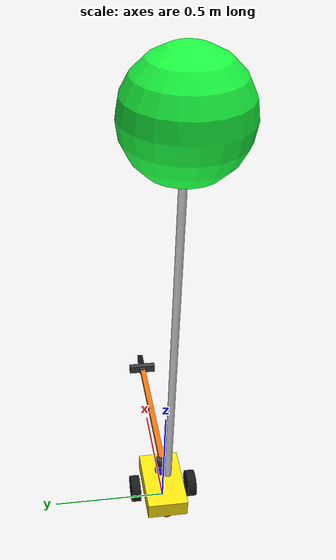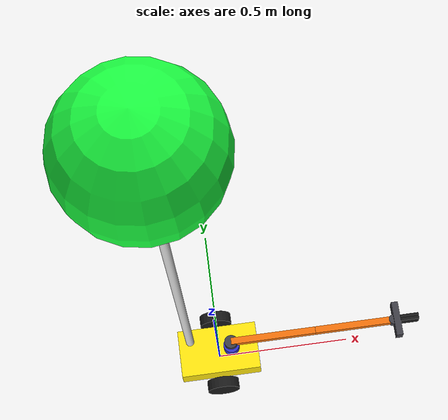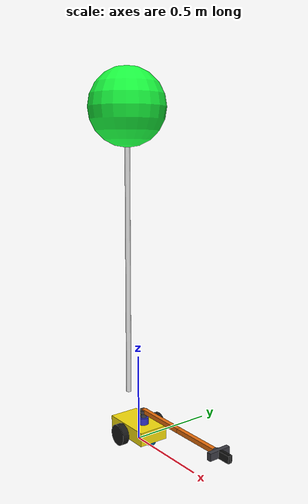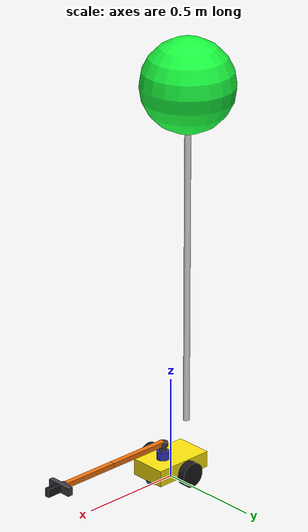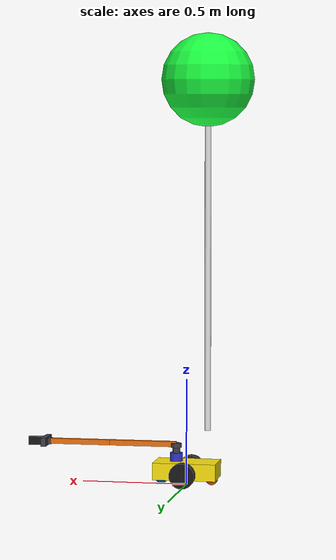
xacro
<?xml version="1.0"?>
<robot name="sewer_robot" xmlns:xacro="http://www.ros.org/wiki/xacro">
  <xacro:include filename="sewer_robot.urdf.xacro"/>

  <xacro:property name="l1" value="0.32"/>
  <xacro:property name="l2" value="0.30"/>
  <xacro:property name="link_t" value="0.025"/>
  <xacro:property name="finger_len" value="0.07"/>
  <xacro:property name="finger_t" value="0.012"/>
  <xacro:property name="finger_h" value="0.04"/>
  <xacro:property name="finger_max" value="0.055"/>
  <xacro:property name="g_tip" value="0.06"/>

  <xacro:macro name="cyl_inertia" params="m r h">
    <inertia ixx="${m*(3*r*r+h*h)/12}" ixy="0" ixz="0" iyy="${m*(3*r*r+h*h)/12}" iyz="0" izz="${m*r*r/2}"/>
  </xacro:macro>

  <!-- ===== depth camera (same frame and hfov as robot_cam; planar depth in metres) ===== -->
  <gazebo reference="camera_link">
    <sensor name="robot_depth" type="depth_camera">
      <always_on>true</always_on>
      <update_rate>5</update_rate>
      <topic>robot_depth</topic>
      <gz_frame_id>camera_link</gz_frame_id>
      <camera>
        <horizontal_fov>1.5</horizontal_fov>
        <image><width>320</width><height>180</height><format>R_FLOAT32</format></image>
        <clip><near>0.1</near><far>5.0</far></clip>
      </camera>
    </sensor>
  </gazebo>

  <!-- ===== arm ===== -->
  <link name="arm_mast_link">
    <visual><origin xyz="0 0 0.015"/><geometry><cylinder radius="0.018" length="0.03"/></geometry>
      <material name="arm_grey"><color rgba="0.25 0.25 0.28 1"/></material></visual>
    <collision><origin xyz="0 0 0.015"/><geometry><cylinder radius="0.018" length="0.03"/></geometry></collision>
    <inertial><origin xyz="0 0 0.015"/><mass value="0.05"/><xacro:cyl_inertia m="0.05" r="0.018" h="0.03"/></inertial>
  </link>
  <!-- On top of the LiDAR housing (lidar_link at z 0.07, housing top at 0.09): nothing of the folded arm is in the scan plane. -->
  <joint name="arm_mast_joint" type="fixed">
    <parent link="base_link"/><child link="arm_mast_link"/><origin xyz="0.05 0 0.09"/>
  </joint>

  <link name="arm_turret_link">
    <visual><origin xyz="0 0 0.005"/><geometry><cylinder radius="0.025" length="0.02"/></geometry>
      <material name="arm_grey"/></visual>
    <collision><origin xyz="0 0 0.005"/><geometry><cylinder radius="0.025" length="0.02"/></geometry></collision>
    <inertial><origin xyz="0 0 0.005"/><mass value="0.05"/><xacro:cyl_inertia m="0.05" r="0.025" h="0.02"/></inertial>
  </link>
  <joint name="arm_turret_joint" type="revolute">
    <parent link="arm_mast_link"/><child link="arm_turret_link"/><origin xyz="0 0 0.03"/><axis xyz="0 0 1"/>
    <limit lower="-1.9" upper="1.9" effort="5" velocity="1.5"/><dynamics damping="0.2"/>
  </joint>

  <xacro:macro name="arm_link" params="name length mass rgba">
    <link name="${name}">
      <visual><origin xyz="${length/2} 0 0"/><geometry><box size="${length} ${link_t} ${link_t}"/></geometry>
        <material name="${name}_mat"><color rgba="${rgba}"/></material></visual>
      <collision><origin xyz="${length/2} 0 0"/><geometry><box size="${length} ${link_t} ${link_t}"/></geometry></collision>
      <inertial><origin xyz="${length/2} 0 0"/><mass value="${mass}"/>
        <inertia ixx="${mass*2*link_t*link_t/12}" ixy="0" ixz="0" iyy="${mass*(length*length+link_t*link_t)/12}" iyz="0"
                 izz="${mass*(length*length+link_t*link_t)/12}"/></inertial>
    </link>
  </xacro:macro>
  <xacro:arm_link name="arm_upper_link" length="${l1}" mass="0.18" rgba="0.95 0.45 0.05 1"/>
  <xacro:arm_link name="arm_fore_link" length="${l2}" mass="0.15" rgba="0.95 0.45 0.05 1"/>

  <!-- pitch joints: +angle points the link DOWN (rotation about +y) -->
  <joint name="arm_shoulder_joint" type="revolute">
    <parent link="arm_turret_link"/><child link="arm_upper_link"/><origin xyz="0 0 0.01"/><axis xyz="0 1 0"/>
    <limit lower="-2.7" upper="1.6" effort="20" velocity="1.5"/><dynamics damping="0.3"/>
  </joint>
  <joint name="arm_elbow_joint" type="revolute">
    <parent link="arm_upper_link"/><child link="arm_fore_link"/><origin xyz="${l1} 0 0"/><axis xyz="0 1 0"/>
    <limit lower="-2.8" upper="2.8" effort="12" velocity="1.5"/><dynamics damping="0.3"/>
  </joint>

  <link name="gripper_link">
    <visual><origin xyz="0.0125 0 0"/><geometry><box size="0.025 0.13 0.04"/></geometry>
      <material name="arm_grey"/></visual>
    <collision><origin xyz="0.0125 0 0"/><geometry><box size="0.025 0.13 0.04"/></geometry></collision>
    <inertial><origin xyz="0.0125 0 0"/><mass value="0.10"/>
      <inertia ixx="1.6e-4" ixy="0" ixz="0" iyy="1.9e-5" iyz="0" izz="1.5e-4"/></inertial>
  </link>
  <link name="arm_wrist_link">
    <visual><geometry><cylinder radius="0.018" length="0.03"/></geometry><material name="arm_grey"/></visual>
    <collision><geometry><cylinder radius="0.018" length="0.03"/></geometry></collision>
    <inertial><mass value="0.04"/><xacro:cyl_inertia m="0.04" r="0.018" h="0.03"/></inertial>
  </link>
  <joint name="arm_wrist_joint" type="revolute">
    <parent link="arm_fore_link"/><child link="arm_wrist_link"/><origin xyz="${l2} 0 0"/><axis xyz="0 1 0"/>
    <limit lower="-2.8" upper="2.8" effort="5" velocity="2.0"/><dynamics damping="0.1"/>
  </joint>
  <joint name="arm_wrist_yaw_joint" type="revolute">
    <parent link="arm_wrist_link"/><child link="gripper_link"/><origin xyz="0 0 0"/><axis xyz="0 0 1"/>
    <limit lower="-1.7" upper="1.7" effort="3" velocity="2.0"/><dynamics damping="0.05"/>
  </joint>

  <!-- fingers: inner face at y = +q (left) / -q (right); opening = q_left + q_right -->
  <xacro:macro name="finger" params="side sign">
    <link name="${side}_finger_link">
      <visual><origin xyz="0 ${sign*finger_t/2} 0"/><geometry><box size="${finger_len} ${finger_t} ${finger_h}"/></geometry>
        <material name="finger_mat"><color rgba="0.1 0.1 0.1 1"/></material></visual>
      <collision><origin xyz="0 ${sign*finger_t/2} 0"/><geometry><box size="${finger_len} ${finger_t} ${finger_h}"/></geometry></collision>
      <inertial><origin xyz="0 ${sign*finger_t/2} 0"/><mass value="0.03"/>
        <inertia ixx="4.4e-6" ixy="0" ixz="0" iyy="1.6e-5" iyz="0" izz="1.3e-5"/></inertial>
    </link>
    <joint name="${side}_finger_joint" type="prismatic">
      <parent link="gripper_link"/><child link="${side}_finger_link"/><origin xyz="${g_tip} 0 0"/>
      <axis xyz="0 ${sign} 0"/><limit lower="0" upper="${finger_max}" effort="20" velocity="0.2"/>
      <dynamics damping="1.0"/>
    </joint>
    <gazebo reference="${side}_finger_link"><mu1>1.5</mu1><mu2>1.5</mu2><kp>100000</kp><kd>10</kd></gazebo>
    <xacro:contact_sensor link="${side}_finger_link" collision="${side}_finger_link_collision"/>
  </xacro:macro>
  <xacro:finger side="left" sign="1"/>
  <xacro:finger side="right" sign="-1"/>

  <!-- ===== Gazebo joint controllers (SIMULATED). Gains are first guesses: tune in Gazebo (see ACCOUNT2_README). ===== -->
  <xacro:macro name="pos_ctl" params="joint topic p i d cmd_max init">
    <gazebo>
      <plugin filename="gz-sim-joint-position-controller-system" name="gz::sim::systems::JointPositionController">
        <joint_name>${joint}</joint_name>
        <topic>${topic}</topic>
        <p_gain>${p}</p_gain><i_gain>${i}</i_gain><d_gain>${d}</d_gain>
        <i_max>${cmd_max/2}</i_max><i_min>${-cmd_max/2}</i_min>
        <cmd_max>${cmd_max}</cmd_max><cmd_min>${-cmd_max}</cmd_min>
        <initial_position>${init}</initial_position>
      </plugin>
    </gazebo>
  </xacro:macro>
  <!-- initial positions = the stow pose from arm_kinematics.ik(ArmGeometry().stow) -->
  <xacro:pos_ctl joint="arm_turret_joint"   topic="arm/turret/cmd"   p="20"  i="1"  d="1.0" cmd_max="5"  init="0.0"/>
  <xacro:pos_ctl joint="arm_shoulder_joint" topic="arm/shoulder/cmd" p="50"  i="12" d="2.5" cmd_max="20" init="-2.539"/>
  <xacro:pos_ctl joint="arm_elbow_joint"    topic="arm/elbow/cmd"    p="35"  i="8"  d="1.5" cmd_max="12" init="2.745"/>
  <xacro:pos_ctl joint="arm_wrist_joint"    topic="arm/wrist/cmd"    p="10"  i="2"  d="0.5" cmd_max="5"  init="-0.206"/>
  <xacro:pos_ctl joint="arm_wrist_yaw_joint" topic="arm/wrist_yaw/cmd" p="6"   i="1"  d="0.3" cmd_max="3"  init="0.0"/>
  <xacro:pos_ctl joint="left_finger_joint"  topic="arm/left_finger/cmd"  p="600" i="0" d="10" cmd_max="15" init="0.04"/>
  <xacro:pos_ctl joint="right_finger_joint" topic="arm/right_finger/cmd" p="600" i="0" d="10" cmd_max="15" init="0.04"/>

  <gazebo>
    <plugin filename="gz-sim-joint-state-publisher-system" name="gz::sim::systems::JointStatePublisher">
      <topic>joint_states</topic>
      <joint_name>arm_turret_joint</joint_name>
      <joint_name>arm_shoulder_joint</joint_name>
      <joint_name>arm_elbow_joint</joint_name>
      <joint_name>arm_wrist_joint</joint_name>
      <joint_name>arm_wrist_yaw_joint</joint_name>
      <joint_name>left_finger_joint</joint_name>
      <joint_name>right_finger_joint</joint_name>
    </plugin>
  </gazebo>
</robot>

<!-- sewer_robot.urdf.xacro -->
<robot name="sewer_robot" xmlns:xacro="http://www.ros.org/wiki/xacro">

  <!-- Dimensions (metres / kg). Defaults chosen Day 2, see PLAN.md "Decisions made". -->
  <xacro:property name="chassis_l" value="0.30"/>
  <xacro:property name="chassis_w" value="0.18"/>
  <xacro:property name="chassis_h" value="0.08"/>
  <xacro:property name="chassis_m" value="4.0"/>
  <xacro:property name="wheel_r"   value="0.06"/>
  <xacro:property name="wheel_w"   value="0.04"/>
  <xacro:property name="wheel_m"   value="0.3"/>
  <xacro:property name="track"     value="0.26"/>  <!-- wheel centre to wheel centre -->
  <xacro:property name="caster_r"  value="0.03"/>
  <xacro:property name="caster_x"  value="0.12"/>
  <xacro:property name="caster_m"  value="0.05"/>

  <xacro:macro name="box_inertia" params="m x y z">
    <inertia ixx="${m*(y*y+z*z)/12}" ixy="0" ixz="0" iyy="${m*(x*x+z*z)/12}" iyz="0" izz="${m*(x*x+y*y)/12}"/>
  </xacro:macro>

  <!-- REP 105: base_footprint (on ground) -> base_link (wheel-axle height) -> sensors/wheels -->
  <link name="base_footprint">
    <inertial><mass value="0.001"/><inertia ixx="1e-6" ixy="0" ixz="0" iyy="1e-6" iyz="0" izz="1e-6"/></inertial>
  </link>

  <joint name="base_joint" type="fixed">
    <parent link="base_footprint"/><child link="base_link"/>
    <origin xyz="0 0 ${wheel_r}" rpy="0 0 0"/>
  </joint>
  <gazebo reference="base_joint"><preserveFixedJoint>true</preserveFixedJoint></gazebo>

  <link name="base_link">
    <visual>
      <origin xyz="0 0 0.01"/>
      <geometry><box size="${chassis_l} ${chassis_w} ${chassis_h}"/></geometry>
      <material name="body"><color rgba="1.0 0.9 0.05 1"/></material>
    </visual>
    <collision>
      <origin xyz="0 0 0.01"/>
      <geometry><box size="${chassis_l} ${chassis_w} ${chassis_h}"/></geometry>
    </collision>
    <inertial>
      <origin xyz="0 0 0.01"/><mass value="${chassis_m}"/>
      <xacro:box_inertia m="${chassis_m}" x="${chassis_l}" y="${chassis_w}" z="${chassis_h}"/>
    </inertial>
  </link>

  <!-- Wheels: continuous joints about y -->
  <xacro:macro name="wheel" params="name y">
    <link name="${name}_wheel_link">
      <visual>
        <origin rpy="${pi/2} 0 0"/>
        <geometry><cylinder radius="${wheel_r}" length="${wheel_w}"/></geometry>
        <material name="tyre"><color rgba="0.1 0.1 0.1 1"/></material>
      </visual>
      <!-- Sphere collision (visual stays a cylinder): a flat cylinder's contact patch scrubs at the
           inner edge when pivoting, shrinking the effective track by ~wheel_w (measured Day 3). -->
      <collision>
        <geometry><sphere radius="${wheel_r}"/></geometry>
      </collision>
      <inertial>
        <mass value="${wheel_m}"/>
        <inertia ixx="${wheel_m*(3*wheel_r*wheel_r+wheel_w*wheel_w)/12}" ixy="0" ixz="0"
                 iyy="${wheel_m*wheel_r*wheel_r/2}" iyz="0"
                 izz="${wheel_m*(3*wheel_r*wheel_r+wheel_w*wheel_w)/12}"/>
      </inertial>
    </link>
    <joint name="${name}_wheel_joint" type="continuous">
      <parent link="base_link"/><child link="${name}_wheel_link"/>
      <origin xyz="0 ${y} 0"/><axis xyz="0 1 0"/>
    </joint>
    <gazebo reference="${name}_wheel_link"><mu1>1.0</mu1><mu2>1.0</mu2></gazebo>
  </xacro:macro>
  <xacro:wheel name="left"  y="${ track/2}"/>
  <xacro:wheel name="right" y="${-track/2}"/>

  <!-- Frictionless ball casters front and back (passive support) -->
  <xacro:macro name="caster" params="name x">
    <link name="${name}_caster_link">
      <collision><geometry><sphere radius="${caster_r}"/></geometry></collision>
      <visual><geometry><sphere radius="${caster_r}"/></geometry></visual>
      <inertial>
        <mass value="${caster_m}"/>
        <inertia ixx="${0.4*caster_m*caster_r*caster_r}" ixy="0" ixz="0" iyy="${0.4*caster_m*caster_r*caster_r}" iyz="0" izz="${0.4*caster_m*caster_r*caster_r}"/>
      </inertial>
    </link>
    <joint name="${name}_caster_joint" type="fixed">
      <parent link="base_link"/><child link="${name}_caster_link"/>
      <origin xyz="${x} 0 ${caster_r-wheel_r}"/>
    </joint>
    <gazebo reference="${name}_caster_link"><mu1>0.0</mu1><mu2>0.0</mu2></gazebo>
  </xacro:macro>
  <xacro:caster name="front" x="${caster_x}"/>
  <xacro:caster name="rear"  x="${-caster_x}"/>

  <!-- IMU at chassis centre -->
  <link name="imu_link"/>
  <joint name="imu_joint" type="fixed">
    <parent link="base_link"/><child link="imu_link"/><origin xyz="0 0 0.02"/>
  </joint>

  <!-- 2D LiDAR on top, slightly forward -->
  <link name="lidar_link">
    <visual><geometry><cylinder radius="0.03" length="0.04"/></geometry>
      <material name="lidar"><color rgba="0.2 0.2 0.8 1"/></material></visual>
  </link>
  <joint name="lidar_joint" type="fixed">
    <parent link="base_link"/><child link="lidar_link"/><origin xyz="0.05 0 0.07"/>
  </joint>

  <link name="beacon_link">
    <visual>
      <origin xyz="0 0 0.8"/>
      <geometry><cylinder radius="0.015" length="1.6"/></geometry>
      <material name="mast"><color rgba="0.9 0.9 0.9 1"/></material>
    </visual>
    <visual>
      <origin xyz="0 0 1.65"/>
      <geometry><sphere radius="0.22"/></geometry>
      <material name="ball"><color rgba="0.1 1.0 0.25 1"/></material>
    </visual>
  </link>
  <joint name="beacon_joint" type="fixed">
    <parent link="base_link"/><child link="beacon_link"/><origin xyz="-0.1 0 0.2"/>
  </joint>

  <link name="camera_link"/>
  <joint name="camera_joint" type="fixed">
    <parent link="base_link"/><child link="camera_link"/><origin xyz="0.16 0 0.05" rpy="0 0.05 0"/>
  </joint>
  <link name="chase_cam_link"/>
  <joint name="chase_cam_joint" type="fixed">
    <parent link="base_link"/><child link="chase_cam_link"/><origin xyz="-0.75 0 0.55" rpy="0 0.5 0"/>
  </joint>

  <!-- ===== Gazebo (SIMULATED) ===== -->
  <gazebo>
    <!-- Wheel odometry + cmd_vel. Odom is integrated from wheel joints; noise/slip injection comes later. -->
    <plugin filename="gz-sim-diff-drive-system" name="gz::sim::systems::DiffDrive">
      <left_joint>left_wheel_joint</left_joint>
      <right_joint>right_wheel_joint</right_joint>
      <wheel_separation>${track}</wheel_separation>
      <wheel_radius>${wheel_r}</wheel_radius>
      <max_linear_acceleration>1.0</max_linear_acceleration>
      <max_angular_acceleration>2.0</max_angular_acceleration>
      <topic>cmd_vel</topic>
      <odom_topic>odom</odom_topic>
      <tf_topic>tf</tf_topic>
      <frame_id>odom</frame_id>
      <child_frame_id>base_footprint</child_frame_id>
      <odom_publish_frequency>50</odom_publish_frequency>
    </plugin>
    <plugin filename="gz-sim-joint-state-publisher-system" name="gz::sim::systems::JointStatePublisher">
      <topic>joint_states</topic>
      <joint_name>left_wheel_joint</joint_name>
      <joint_name>right_wheel_joint</joint_name>
    </plugin>
    <!-- TRUE pose from the physics engine. Evaluation only, never fed to a filter. -->
    <plugin filename="gz-sim-odometry-publisher-system" name="gz::sim::systems::OdometryPublisher">
      <odom_frame>world</odom_frame>
      <robot_base_frame>base_footprint</robot_base_frame>
      <odom_topic>ground_truth/odom</odom_topic>
      <tf_topic>ground_truth/tf</tf_topic>
      <dimensions>2</dimensions>
      <odom_publish_frequency>50</odom_publish_frequency>
    </plugin>
  </gazebo>

  <gazebo reference="imu_link">
    <sensor name="imu" type="imu">
      <always_on>true</always_on>
      <update_rate>100</update_rate>
      <topic>imu</topic>
      <gz_frame_id>imu_link</gz_frame_id>
      <imu>
        <angular_velocity>
          <x><noise type="gaussian"><mean>0</mean><stddev>0.002</stddev></noise></x>
          <y><noise type="gaussian"><mean>0</mean><stddev>0.002</stddev></noise></y>
          <z><noise type="gaussian"><mean>0</mean><stddev>0.002</stddev></noise></z>
        </angular_velocity>
        <linear_acceleration>
          <x><noise type="gaussian"><mean>0</mean><stddev>0.017</stddev></noise></x>
          <y><noise type="gaussian"><mean>0</mean><stddev>0.017</stddev></noise></y>
          <z><noise type="gaussian"><mean>0</mean><stddev>0.017</stddev></noise></z>
        </linear_acceleration>
      </imu>
    </sensor>
  </gazebo>

  <xacro:macro name="contact_sensor" params="link collision">
    <gazebo reference="${link}">
      <sensor name="${link}_contact" type="contact">
        <always_on>true</always_on>
        <update_rate>20</update_rate>
        <contact><collision>${collision}</collision></contact>
      </sensor>
    </gazebo>
  </xacro:macro>
  <xacro:contact_sensor link="base_link" collision="base_link_collision"/>
  <xacro:contact_sensor link="left_wheel_link" collision="left_wheel_link_collision"/>
  <xacro:contact_sensor link="right_wheel_link" collision="right_wheel_link_collision"/>

  <gazebo reference="camera_link">
    <sensor name="robot_cam" type="camera">
      <always_on>true</always_on>
      <update_rate>10</update_rate>
      <topic>robot_cam/image</topic>
      <gz_frame_id>camera_link</gz_frame_id>
      <camera>
        <horizontal_fov>1.5</horizontal_fov>
        <image><width>640</width><height>360</height></image>
        <clip><near>0.05</near><far>30</far></clip>
      </camera>
    </sensor>
  </gazebo>

  <gazebo reference="chase_cam_link">
    <sensor name="chase_cam" type="camera">
      <always_on>true</always_on>
      <update_rate>10</update_rate>
      <topic>chase_cam/image</topic>
      <gz_frame_id>chase_cam_link</gz_frame_id>
      <camera>
        <horizontal_fov>1.2</horizontal_fov>
        <image><width>640</width><height>360</height></image>
        <clip><near>0.05</near><far>40</far></clip>
      </camera>
    </sensor>
  </gazebo>

  <gazebo reference="lidar_link">
    <sensor name="lidar" type="gpu_lidar">
      <always_on>true</always_on>
      <update_rate>10</update_rate>
      <topic>scan</topic>
      <gz_frame_id>lidar_link</gz_frame_id>
      <lidar>
        <scan><horizontal>
          <samples>360</samples><resolution>1</resolution>
          <min_angle>-3.14159</min_angle><max_angle>3.14159</max_angle>
        </horizontal></scan>
        <range><min>0.12</min><max>8.0</max><resolution>0.01</resolution></range>
        <noise><type>gaussian</type><mean>0.0</mean><stddev>0.01</stddev></noise>
      </lidar>
    </sensor>
  </gazebo>
</robot>
